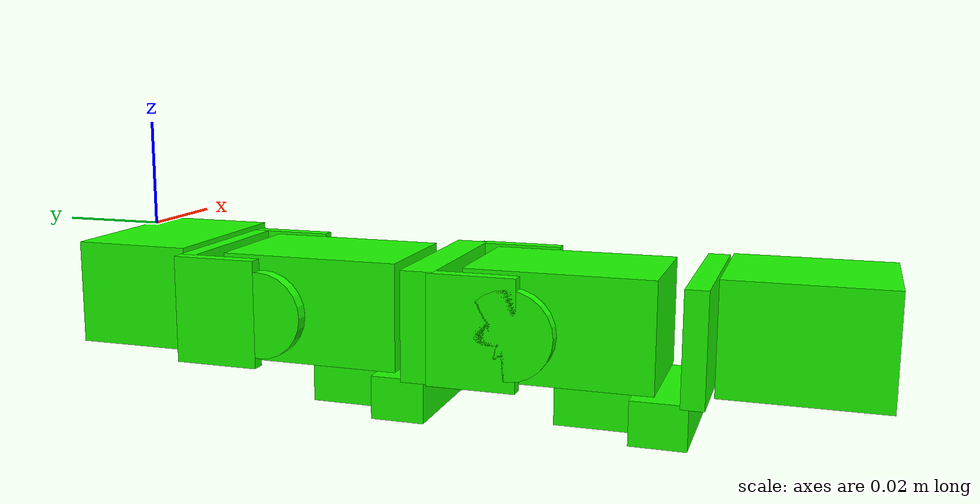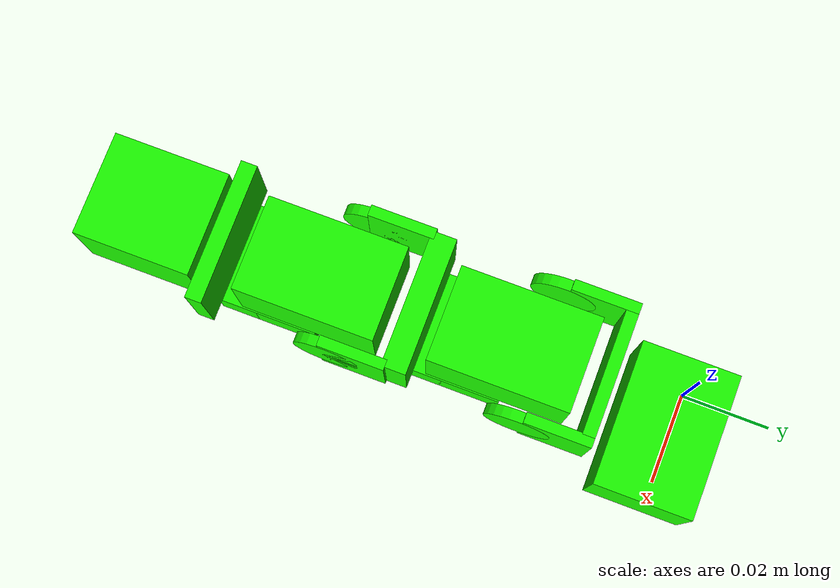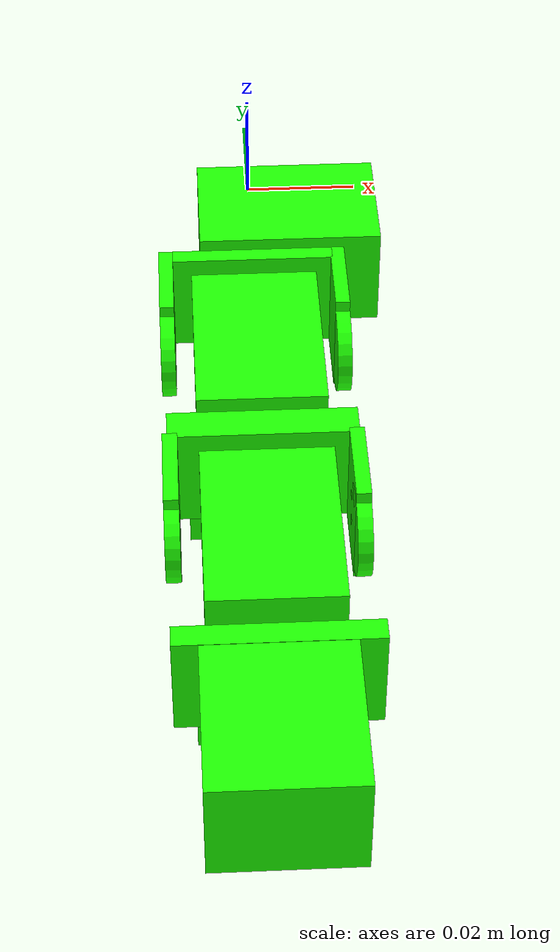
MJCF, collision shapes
<?xml version="1.0"?>
<mujoco>
  <compiler angle="radian" meshdir="assets" autolimits="true"/>
  <asset>
    <material name="gray" rgba="0.4 0.4 0.4 1"/>
    <material name="yellow" rgba="0.866667 0.866667 0.0509804 1"/>
    <material name="light_orange" rgba="1 0.749 0 1"/>
    <material name="green" rgba="0.11 1 0 0.2"/>
    <mesh file="pip.stl"/>
    <mesh file="thumb_pip.stl"/>
    <mesh file="thumb_dip.stl"/>
    <mesh file="thumb_fingertip.stl"/>
  </asset>
  <default>
    <default class="thumb">
      <material specular="0.5" shininess="0.25"/>
      <default class="visual">
        <geom type="mesh" contype="0" conaffinity="0" group="2"/>
      </default>
      <default class="collision_box">
        <geom group="3" type="box" mass="0" material="green"/>
      </default>
       <default class="collision_cylinder">
        <geom group="3" type="cylinder" mass="0" material="green"/>
      </default>
      <joint axis="0 0 -1" damping="2000"/>
    </default>
  </default>
  <worldbody>
    <body name="knuckle_TH" pos="0 0 0" quat="0 0 0 1" childclass="thumb">
      <joint name="j0_TH" range="-0.349 2.094"/>
      <inertial mass="0.032" pos="0 0 0" diaginertia="4.7981e-06 4.23406e-06 2.86184e-06"/>
      <geom class="visual" pos="-0.00535664 0.0003 0.000784034" quat="0.5 -0.5 -0.5 -0.5" mesh="pip" material="yellow"/>

      <geom name="THknuckle_b_1" class="collision_box" pos="-0.0075 0.0 -0.013" euler="0 0 0"
       size="0.017 0.0115 0.01"/>

      <body name="proximal_TH" pos="0 0.0143 -0.013" quat="0.5 0.5 -0.5 0.5">
        <joint name="j1_TH" range="-0.47 2.443"/>
        <inertial mass="0.003" pos="0 0 0" diaginertia="5.93e-07 5.49e-07 2.24e-07"/>
        <geom class="visual" pos="0.0119619 0 -0.0158526" quat="0.707107 0.707107 0 0" mesh="thumb_pip" material="yellow"/>

        <geom name="proximal_b_1" class="collision_box" pos="0.0 0.0 -0.0015" euler="0 0 0"
         size="  0.01 0.015 0.0015"/>
        <geom name="proximal_b_2" class="collision_box" pos="0.0 0.016 -0.008" euler="0 0 0"
         size="0.01 0.0013 0.008"/>
        <geom name="proximal_c_3" class="collision_cylinder" pos="0.0 0.016 -0.017" euler="1.57 0 0"
          size="0.008 0.0013 "/>
        <geom name="proximal_b_4" class="collision_box" pos="0.0 -0.016 -0.008" euler="0 0 0"
         size="0.01 0.0013 0.008"/>
        <geom name="proximal_c_5" class="collision_cylinder" pos="0.0 -0.016 -0.017" euler="1.57 0 0"
          size="0.008 0.0013 "/>

        <body name="middle_TH" pos="0 0.0145 -0.017" quat="0.707107 -0.707107 0 0">
          <joint name="j2_TH" range="-1.2 1.9"/>
          <inertial mass="0.038" pos="0 0 0" diaginertia="8.48742e-06 7.67823e-06 3.82835e-06"/>
          <geom class="visual" pos="0.0439687 0.057953 -0.00862868" quat="1 0 0 0" mesh="thumb_dip" material="yellow"/>

          <geom name="THmiddle_b_1" class="collision_box" pos="0.0 0.03 -0.0145" euler="0 0 0"
          size="0.01 0.003 0.0165"/>
          <geom name="THmiddle_b_2" class="collision_box" pos="0.0 0.04 0.0015" euler="0 0 0"
            size="0.01 0.008 0.0013"/>
          <geom name="THmiddle_c_3" class="collision_cylinder" pos="0.0 0.0465 0.0015" euler="0 0 0"
            size="0.008 0.0013 "/>
          <geom name="THmiddle_b_4" class="collision_box" pos="0.0 0.04 -0.0305" euler="0 0 0"
            size="0.01 0.008 0.0013"/>
          <geom name="THmiddle_c_5" class="collision_cylinder" pos="0.0 0.0465 -0.0305" euler="0 0 0"
            size="0.008 0.0013 "/>
          <geom name="THmiddle_b_6" class="collision_box" pos="-0.0145 0.013 -0.0115"
           euler="0 0 0" size="0.004 0.0075 0.009"/>
          <geom name="THmiddle_b_7" class="collision_box" pos="-0.0145 0.025 -0.015"
           euler="0 0 0" size="0.004 0.005 0.0125"/>
          <geom name="THmiddle_b_8" class="collision_box" pos="-0.0 0.007 -0.0143"
           euler="0 0 0" size="0.01 0.017 0.0115"/>

          <body name="distal_TH" pos="0 0.0466 0.0002" quat="0 0 0 1">
            <joint name="j3_TH" range="-1.34 1.88"/>
            <inertial mass="0.049" pos="0 0 0" diaginertia="2.03882e-05 1.98443e-05 4.32049e-06"/>
            <geom class="visual" pos="0.0625595 0.0784597 0.0489929" mesh="thumb_fingertip" material="yellow"/>

            <geom name="THdistal_b_6" class="collision_box" pos="0.0145 -0.013 -0.0115"
             euler="0 0 0" size="0.004 0.0075 0.009"/>
            <geom name="THdistal_b_7" class="collision_box" pos="0.0145 -0.025 -0.015"
             euler="0 0 0" size="0.004 0.005 0.0125"/>

            <geom name="THdistal_b_8" class="collision_box" pos="0.0 -0.007 -0.0143"
             euler="0 0 0" size="0.01 0.017 0.0115"/>

            <geom name="THdistal_b_9" class="collision_box" pos="0.0 -0.031 -0.0143"
             euler="0 0 0" size="0.01 0.002 0.017"/>

            <geom name="THdistal_b_10" class="collision_box" pos="-0.0011 -0.048 -0.0145"
             euler="0 0 0" size="0.01 0.014 0.0125"/>

          </body>
        </body>
      </body>
    </body>
  </worldbody>
  <actuator>
  </actuator>
</mujoco>
